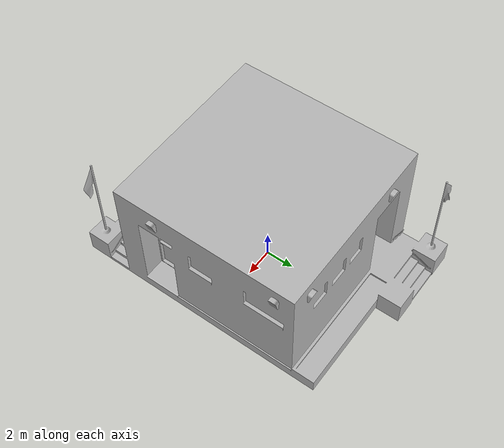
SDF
<?xml version="1.0" ?>
<sdf version="1.6">
  <model name="police_station">
    <static>true</static>
    <link name="link">
      <collision name="collision_main">
        <pose>0 0 4.289977323 0 0 0</pose>
        <geometry>
          <box>
            <size>13.03704276 13.03704276 8.579954646</size>
          </box>
        </geometry>
      </collision>
      <collision name="collision_landing">
        <pose>0 0 0.464086321 0 0 0</pose>
        <geometry>
          <box>
            <size>13.03704276 16.24458524 0.928172642</size>
          </box>
        </geometry>
      </collision>
      <visual name="visual">
        <geometry>
          <mesh>
            <uri>model://police_station/meshes/police_station.dae</uri>
          </mesh>
        </geometry>
      </visual>
    </link>
  </model>
</sdf>
